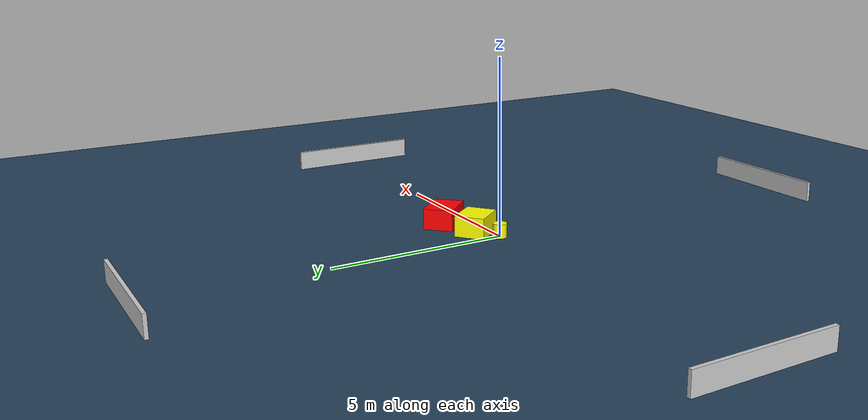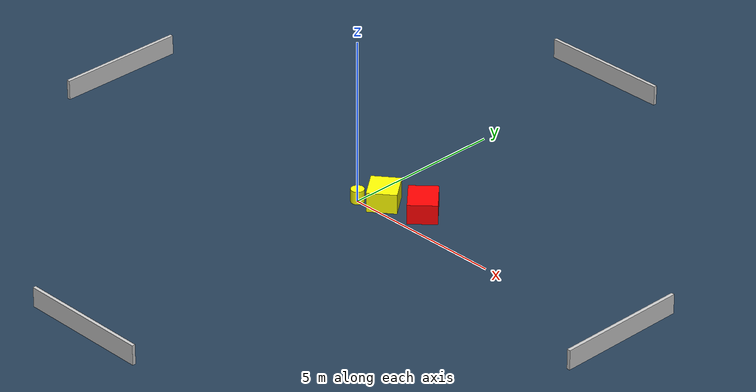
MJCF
<?xml version="1.0" ?>
<mujoco model="generated_environment">
  <option timestep="0.01" integrator="RK4" cone="elliptic"/>
  <default>
    <geom density="1"/>
  </default>
  <asset>
    <texture builtin="gradient" height="3072" name="skybox" rgb1="0.3 0.5 0.7" rgb2="0 0 0" type="skybox" width="512"/>
    <texture builtin="checker" height="300" name="groundplane" rgb1="0.2 0.3 0.4" rgb2="0.1 0.2 0.3" type="2d" width="300"/>
    <material name="groundplane" reflectance="0.2" texrepeat="5 5" texture="groundplane"/>
  </asset>
  <worldbody>
    <light dir="0 0 -1" directional="true" pos="0 0 1.5"/>
    <geom condim="3" friction="0.5 0.005 0.001" material="groundplane" name="floor" pos="0 0 0" size="0 0 0.05" type="plane"/>
    <body name="walls">
      <geom name="wall_1" condim="4" pos="-10.0 0.0 0.3" rgba="0.800000011920929 0.800000011920929 0.800000011920929 1.0" size="0.05 2.0 0.3" type="box"/>
      <geom name="wall_2" condim="4" pos="10.0 0.0 0.3" rgba="0.800000011920929 0.800000011920929 0.800000011920929 1.0" size="0.05 2.0 0.3" type="box"/>
      <geom name="wall_3" condim="4" pos="0.0 -10.0 0.3" rgba="0.800000011920929 0.800000011920929 0.800000011920929 1.0" size="2.0 0.05 0.3" type="box"/>
      <geom name="wall_4" condim="4" pos="0.0 10.0 0.3" rgba="0.800000011920929 0.800000011920929 0.800000011920929 1.0" size="2.0 0.05 0.3" type="box"/>
    </body>
    <body name="robot">
      <joint name="joint_x" type="slide" pos="0 0 0" axis="1 0 0"/>
      <joint name="joint_y" type="slide" pos="0 0 0" axis="0 1 0"/>
      <geom name="robot" type="cylinder" pos="0.0 0.0 0.2" size="0.2 0.2 0.0" mass="5.0" friction="1.0 0.005 0.0001" condim="4" rgba="1.0 1.0 0.0 1.0"/>
    </body>
    <body name="obstacle_1_movable">
      <geom name="obstacle_1_movable" condim="4" pos="0.6234193126375338 0.41649539235313293 0.3" euler="0 0 127.99311828760389" friction="0.0 0.005 0.001" rgba="1.0 1.0 0.0 1.0" size="0.4861343893214197 0.435432753425521 0.3" type="box" mass="0.1"/>
      <joint type="free"/>
    </body>
    <body name="obstacle_2_static">
      <geom name="obstacle_2_static" condim="4" pos="1.764704289782594 0.8105791573340569 0.3" euler="0 0 223.61811276526026" friction="0.0 0.005 0.001" rgba="1.0 0.0 0.0 1.0" size="0.4307322034721679 0.5460116556069055 0.3" type="box"/>
    </body>
  </worldbody>
  <actuator>
    <motor name="actuator_x" joint="joint_x" gear="1" ctrlrange="-1 1"/>
    <motor name="actuator_y" joint="joint_y" gear="1" ctrlrange="-1 1"/>
  </actuator>
</mujoco>
